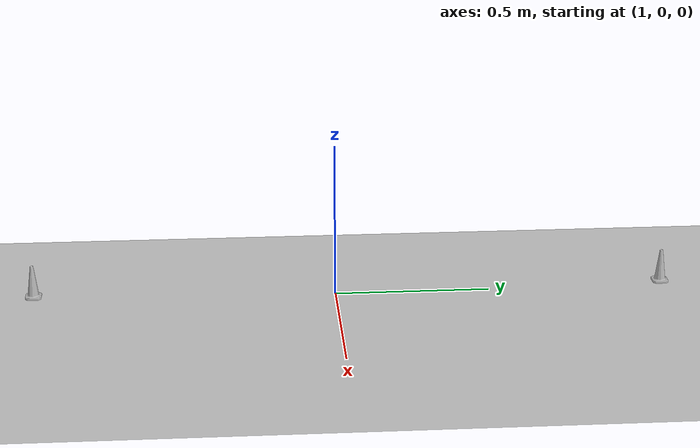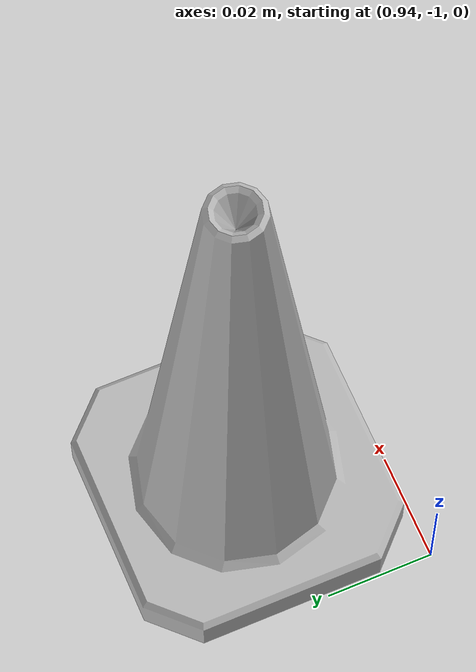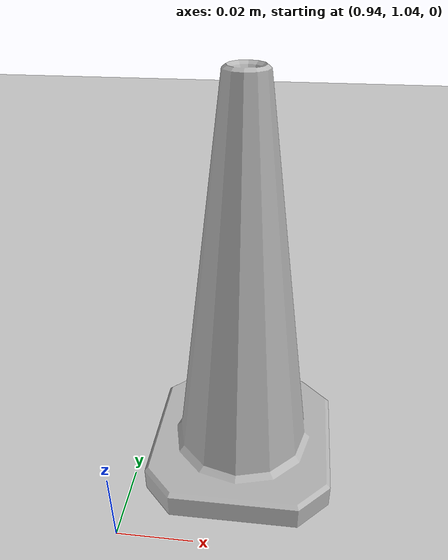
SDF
<sdf version="1.6">
 <world name="default">
  <model name="ground_plane">
   <static>1</static>
   <link name="link">
    <collision name="collision">
     <geometry><plane><normal>0 0 1</normal><size>100 100</size></plane></geometry>
     <surface><friction><ode><mu>100</mu><mu2>50</mu2></ode></friction></surface>
    </collision>
    <visual name="visual">
     <cast_shadows>0</cast_shadows>
     <geometry><plane><normal>0 0 1</normal><size>100 100</size></plane></geometry>
     <material>
      <script><uri>file://media/materials/scripts/gazebo.material</uri><name>Gazebo/Grey</name></script>
     </material>
    </visual>
   </link>
  </model>
  <light name="sun" type="directional">
   <pose>0 0 10 0 -0 0</pose>
   <diffuse>0.8 0.8 0.8 1</diffuse>
   <specular>0.1 0.1 0.1 1</specular>
   <attenuation>
    <range>1000</range>
    <constant>0.9</constant>
    <linear>0.01</linear>
    <quadratic>0.001</quadratic>
   </attenuation>
   <direction>-0.5 0.5 -1</direction>
  </light>
  <gravity>0 0 -9.8</gravity>
  <magnetic_field>6e-06 2.3e-05 -4.2e-05</magnetic_field>
  <atmosphere type="adiabatic"/>
  <physics name="default_physics" default="0" type="ode">
   <max_step_size>0.001</max_step_size>
   <real_time_factor>1</real_time_factor>
   <real_time_update_rate>1000</real_time_update_rate>
  </physics>
  <scene><ambient>0.4 0.4 0.4 1</ambient><background>0.7 0.7 0.7 1</background><shadows>1</shadows></scene>
  <spherical_coordinates>
   <surface_model>EARTH_WGS84</surface_model>
   <latitude_deg>0</latitude_deg>
   <longitude_deg>0</longitude_deg>
   <elevation>0</elevation>
   <heading_deg>0</heading_deg>
  </spherical_coordinates>
  <model name="Construction Cone">
   <static>1</static>
   <link name="link">
    <collision name="collision">
     <geometry>
      <mesh><scale>1 1 1</scale><uri>model://construction_cone/meshes/construction_cone.dae</uri></mesh>
     </geometry>
    </collision>
    <visual name="visual">
     <geometry>
      <mesh><scale>1 1 1</scale><uri>model://construction_cone/meshes/construction_cone.dae</uri></mesh>
     </geometry>
    </visual>
   </link>
   <pose>0.969317 1.07235 0 0 -0 0</pose>
  </model>
  <model name="Construction Cone_0">
   <static>1</static>
   <link name="link">
    <collision name="collision">
     <geometry>
      <mesh><scale>1 1 1</scale><uri>model://construction_cone/meshes/construction_cone.dae</uri></mesh>
     </geometry>
    </collision>
    <visual name="visual">
     <geometry>
      <mesh><scale>1 1 1</scale><uri>model://construction_cone/meshes/construction_cone.dae</uri></mesh>
     </geometry>
    </visual>
   </link>
   <pose>0.965755 -0.973254 0 0 -0 0</pose>
  </model>
 </world>
</sdf>
